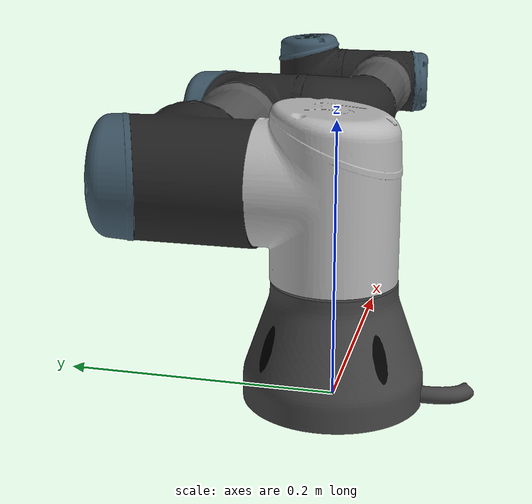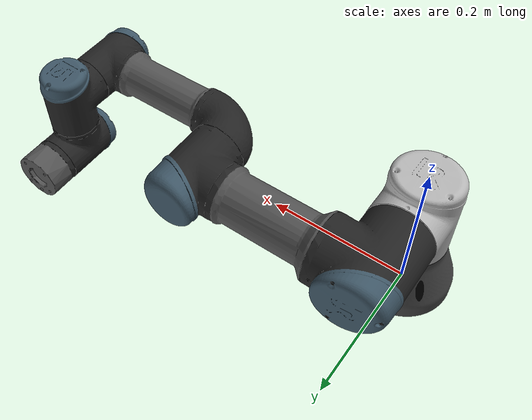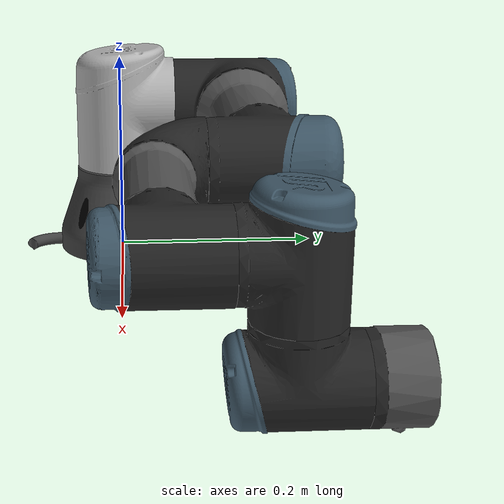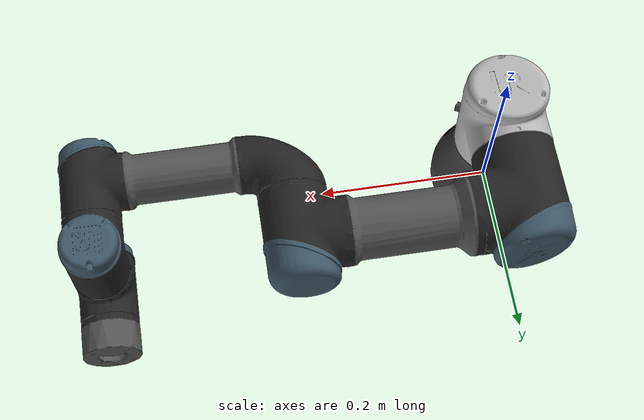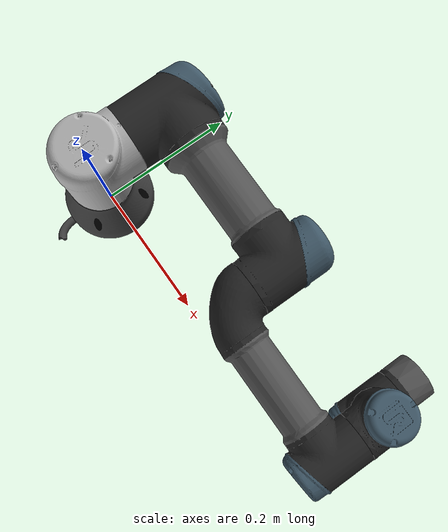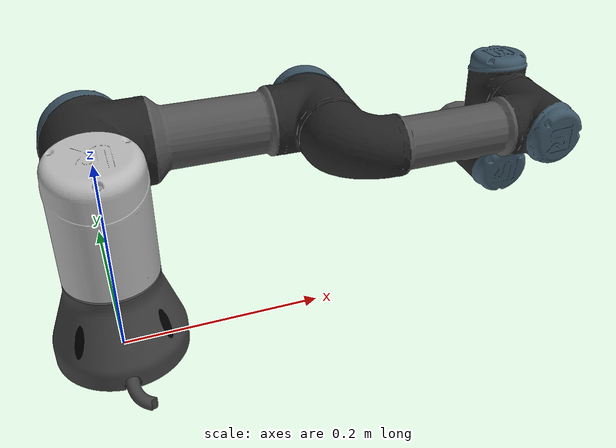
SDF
<sdf version='1.7'>
  <world name="world_demo">
	  <model name='UR3'>
	    <link name='base_link'>
	      <inertial>
		<pose>0 0 0 0 -0 0</pose>
		<mass>2</mass>
		<inertia>
		  <ixx>0.00305317</ixx>
		  <ixy>0</ixy>
		  <ixz>0</ixz>
		  <iyy>0.00305317</iyy>
		  <iyz>0</iyz>
		  <izz>0.005625</izz>
		</inertia>
	      </inertial>
	      <collision name='base_link_collision'>
		<pose>0 0 0 0 -0 0</pose>
		<geometry>
		  <mesh>
		    <scale>1 1 1</scale>
		    <uri>../meshes/ur3/collision/base.stl</uri>
		  </mesh>
		</geometry>
	      </collision>
	      <visual name='base_link_visual'>
		<pose>0 0 0 0 -0 0</pose>
		<geometry>
		  <mesh>
		    <scale>1 1 1</scale>
		    <uri>../meshes/ur3/visual/base.dae</uri>
		  </mesh>
		</geometry>
	      </visual>
	    </link>
	    <joint name='shoulder_pan_joint' type='revolute'>
	      <pose relative_to='base_link'>0 0 0.1519 0 -0 0</pose>
	      <parent>base_link</parent>
	      <child>shoulder_link</child>
	      <axis>
		<xyz>0 0 1</xyz>
		<limit>
		  <lower>-6.28319</lower>
		  <upper>6.28319</upper>
		  <effort>330</effort>
		  <velocity>2.16</velocity>
		</limit>
		<dynamics>
		  <damping>0</damping>
		  <friction>0</friction>
		  <spring_reference>0</spring_reference>
		  <spring_stiffness>0</spring_stiffness>
		</dynamics>
	      </axis>
	    </joint>
	    <link name='shoulder_link'>
	      <pose relative_to='shoulder_pan_joint'>0 0 0 0 -0 0</pose>
	      <inertial>
		<pose>0 0 0 0 -0 0</pose>
		<mass>2</mass>
		<inertia>
		  <ixx>0.00809316</ixx>
		  <ixy>0</ixy>
		  <ixz>0</ixz>
		  <iyy>0.00809316</iyy>
		  <iyz>0</iyz>
		  <izz>0.005625</izz>
		</inertia>
	      </inertial>
	      <collision name='shoulder_link_collision'>
		<pose>0 0 0 0 -0 0</pose>
		<geometry>
		  <mesh>
		    <scale>1 1 1</scale>
		    <uri>../meshes/ur3/collision/shoulder.stl</uri>
		  </mesh>
		</geometry>
	      </collision>
	      <visual name='shoulder_link_visual'>
		<pose>0 0 0 0 -0 0</pose>
		<geometry>
		  <mesh>
		    <scale>1 1 1</scale>
		    <uri>../meshes/ur3/visual/shoulder.dae</uri>
		  </mesh>
		</geometry>
	      </visual>
	    </link>
	    <joint name='shoulder_lift_joint' type='revolute'>
	      <pose relative_to='shoulder_link'>0 0.1198 0 0 1.5708 0</pose>
	      <parent>shoulder_link</parent>
	      <child>upper_arm_link</child>
	      <axis>
		<xyz>0 1 0</xyz>
		<limit>
		  <lower>-6.28319</lower>
		  <upper>6.28319</upper>
		  <effort>330</effort>
		  <velocity>2.16</velocity>
		</limit>
		<dynamics>
		  <damping>0</damping>
		  <friction>0</friction>
		  <spring_reference>0</spring_reference>
		  <spring_stiffness>0</spring_stiffness>
		</dynamics>
	      </axis>
	    </joint>
	    <link name='upper_arm_link'>
	      <pose relative_to='shoulder_lift_joint'>0 0 0 0 -0 0</pose>
	      <inertial>
		<pose>0 0 0.121825 0 -0 0</pose>
		<mass>3.42</mass>
		<inertia>
		  <ixx>0.0217285</ixx>
		  <ixy>0</ixy>
		  <ixz>0</ixz>
		  <iyy>0.0217285</iyy>
		  <iyz>0</iyz>
		  <izz>0.00961875</izz>
		</inertia>
	      </inertial>
	      <collision name='upper_arm_link_collision'>
		<pose>0 0 0 0 -0 0</pose>
		<geometry>
		  <mesh>
		    <scale>1 1 1</scale>
		    <uri>../meshes/ur3/collision/upperarm.stl</uri>
		  </mesh>
		</geometry>
	      </collision>
	      <visual name='upper_arm_link_visual'>
		<pose>0 0 0 0 -0 0</pose>
		<geometry>
		  <mesh>
		    <scale>1 1 1</scale>
		    <uri>../meshes/ur3/visual/upperarm.dae</uri>
		  </mesh>
		</geometry>
	      </visual>
	    </link>
	    <joint name='elbow_joint' type='revolute'>
	      <pose relative_to='upper_arm_link'>0 -0.0925 0.24365 0 -0 0</pose>
	      <parent>upper_arm_link</parent>
	      <child>forearm_link</child>
	      <axis>
		<xyz>0 1 0</xyz>
		<limit>
		  <lower>-3.14159</lower>
		  <upper>3.14159</upper>
		  <effort>150</effort>
		  <velocity>3.15</velocity>
		</limit>
		<dynamics>
		  <damping>0</damping>
		  <friction>0</friction>
		  <spring_reference>0</spring_reference>
		  <spring_stiffness>0</spring_stiffness>
		</dynamics>
	      </axis>
	    </joint>
	    <link name='forearm_link'>
	      <pose relative_to='elbow_joint'>0 0 0 0 -0 0</pose>
	      <inertial>
		<pose>0 0 0.106625 0 -0 0</pose>
		<mass>1.26</mass>
		<inertia>
		  <ixx>0.00654681</ixx>
		  <ixy>0</ixy>
		  <ixz>0</ixz>
		  <iyy>0.00654681</iyy>
		  <iyz>0</iyz>
		  <izz>0.00354375</izz>
		</inertia>
	      </inertial>
	      <collision name='forearm_link_collision'>
		<pose>0 0 0 0 -0 0</pose>
		<geometry>
		  <mesh>
		    <scale>1 1 1</scale>
		    <uri>../meshes/ur3/collision/forearm.stl</uri>
		  </mesh>
		</geometry>
	      </collision>
	      <visual name='forearm_link_visual'>
		<pose>0 0 0 0 -0 0</pose>
		<geometry>
		  <mesh>
		    <scale>1 1 1</scale>
		    <uri>../meshes/ur3/visual/forearm.dae</uri>
		  </mesh>
		</geometry>
	      </visual>
	    </link>
	    <joint name='wrist_1_joint' type='revolute'>
	      <pose relative_to='forearm_link'>0 0 0.21325 0 1.5708 0</pose>
	      <parent>forearm_link</parent>
	      <child>wrist_1_link</child>
	      <axis>
		<xyz>0 1 0</xyz>
		<limit>
		  <lower>-6.28319</lower>
		  <upper>6.28319</upper>
		  <effort>54</effort>
		  <velocity>3.2</velocity>
		</limit>
		<dynamics>
		  <damping>0</damping>
		  <friction>0</friction>
		  <spring_reference>0</spring_reference>
		  <spring_stiffness>0</spring_stiffness>
		</dynamics>
	      </axis>
	    </joint>
	    <link name='wrist_1_link'>
	      <pose relative_to='wrist_1_joint'>0 0 0 0 -0 0</pose>
	      <inertial>
		<pose>0 0.08505 0 0 -0 0</pose>
		<mass>0.8</mass>
		<inertia>
		  <ixx>0.002085</ixx>
		  <ixy>0</ixy>
		  <ixz>0</ixz>
		  <iyy>0.002085</iyy>
		  <iyz>0</iyz>
		  <izz>0.00225</izz>
		</inertia>
	      </inertial>
	      <collision name='wrist_1_link_collision'>
		<pose>0 0 0 0 -0 0</pose>
		<geometry>
		  <mesh>
		    <scale>1 1 1</scale>
		    <uri>../meshes/ur3/collision/wrist1.stl</uri>
		  </mesh>
		</geometry>
	      </collision>
	      <visual name='wrist_1_link_visual'>
		<pose>0 0 0 0 -0 0</pose>
		<geometry>
		  <mesh>
		    <scale>1 1 1</scale>
		    <uri>../meshes/ur3/visual/wrist1.dae</uri>
		  </mesh>
		</geometry>
	      </visual>
	    </link>
	    <joint name='wrist_2_joint' type='revolute'>
	      <pose relative_to='wrist_1_link'>0 0.08505 0 0 -0 0</pose>
	      <parent>wrist_1_link</parent>
	      <child>wrist_2_link</child>
	      <axis>
		<xyz>0 0 1</xyz>
		<limit>
		  <lower>-6.28319</lower>
		  <upper>6.28319</upper>
		  <effort>54</effort>
		  <velocity>3.2</velocity>
		</limit>
		<dynamics>
		  <damping>0</damping>
		  <friction>0</friction>
		  <spring_reference>0</spring_reference>
		  <spring_stiffness>0</spring_stiffness>
		</dynamics>
	      </axis>
	    </joint>
	    <link name='wrist_2_link'>
	      <pose relative_to='wrist_2_joint'>0 0 0 0 -0 0</pose>
	      <inertial>
		<pose>0 0 0.08535 0 -0 0</pose>
		<mass>0.8</mass>
		<inertia>
		  <ixx>0.002085</ixx>
		  <ixy>0</ixy>
		  <ixz>0</ixz>
		  <iyy>0.002085</iyy>
		  <iyz>0</iyz>
		  <izz>0.00225</izz>
		</inertia>
	      </inertial>
	      <collision name='wrist_2_link_collision'>
		<pose>0 0 0 0 -0 0</pose>
		<geometry>
		  <mesh>
		    <scale>1 1 1</scale>
		    <uri>../meshes/ur3/collision/wrist2.stl</uri>
		  </mesh>
		</geometry>
	      </collision>
	      <visual name='wrist_2_link_visual'>
		<pose>0 0 0 0 -0 0</pose>
		<geometry>
		  <mesh>
		    <scale>1 1 1</scale>
		    <uri>../meshes/ur3/visual/wrist2.dae</uri>
		  </mesh>
		</geometry>
	      </visual>
	    </link>
	    <joint name='wrist_3_joint' type='revolute'>
	      <pose relative_to='wrist_2_link'>0 0 0.08535 0 -0 0</pose>
	      <parent>wrist_2_link</parent>
	      <child>wrist_3_link</child>
	      <axis>
		<xyz>0 1 0</xyz>
		<limit>
		  <lower>-6.28319</lower>
		  <upper>6.28319</upper>
		  <effort>54</effort>
		  <velocity>3.2</velocity>
		</limit>
		<dynamics>
		  <damping>0</damping>
		  <friction>0</friction>
		  <spring_reference>0</spring_reference>
		  <spring_stiffness>0</spring_stiffness>
		</dynamics>
	      </axis>
	    </joint>
	    <link name='wrist_3_link'>
	      <pose relative_to='wrist_3_joint'>0 0 0 0 -0 0</pose>
	      <inertial>
		<pose>0 0.0619 0 1.5708 -0 0</pose>
		<mass>0.35</mass>
		<inertia>
		  <ixx>0.000136267</ixx>
		  <ixy>0</ixy>
		  <ixz>0</ixz>
		  <iyy>0.000136267</iyy>
		  <iyz>0</iyz>
		  <izz>0.0001792</izz>
		</inertia>
	      </inertial>
	      <collision name='wrist_3_link_collision'>
		<pose>0 0 0 0 -0 0</pose>
		<geometry>
		  <mesh>
		    <scale>1 1 1</scale>
		    <uri>../meshes/ur3/collision/wrist3.stl</uri>
		  </mesh>
		</geometry>
	      </collision>
	      <visual name='wrist_3_link_visual'>
		<pose>0 0 0 0 -0 0</pose>
		<geometry>
		  <mesh>
		    <scale>1 1 1</scale>
		    <uri>../meshes/ur3/visual/wrist3.dae</uri>
		  </mesh>
		</geometry>
	      </visual>
	    </link>
	  </model>
  </world>
</sdf>
